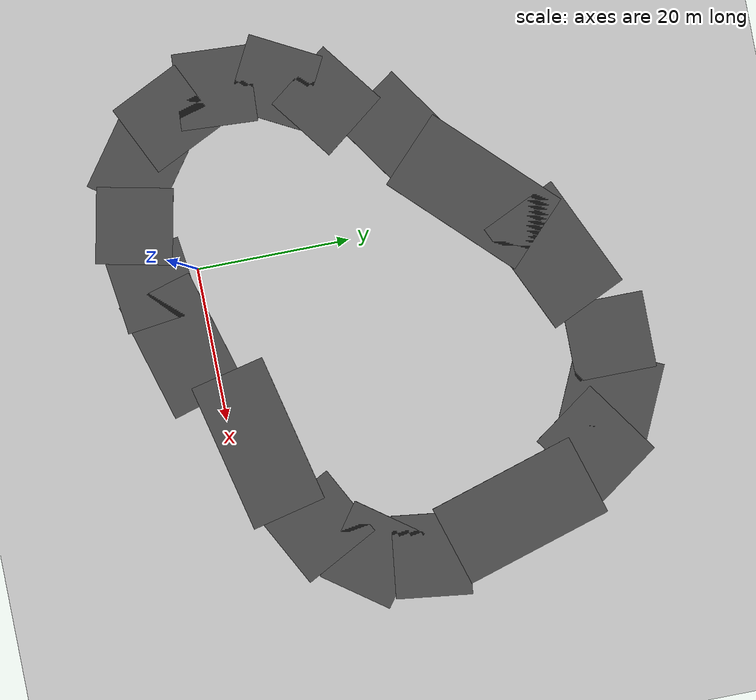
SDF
<sdf version="1.5">
 <world name="default">
  <light name="sun" type="directional">
   <pose>0 0 10 0 -0 0</pose>
   <diffuse>0.8 0.8 0.8 1</diffuse>
   <specular>0.2 0.2 0.2 1</specular>
   <attenuation>
    <range>1000</range>
    <constant>0.9</constant>
    <linear>0.01</linear>
    <quadratic>0.001</quadratic>
   </attenuation>
   <direction>-0.5 0.1 -0.9</direction>
  </light>
  <model name="ground_plane">
   <static>1</static>
   <link name="link">
    <collision name="collision">
     <geometry><plane><normal>0 0 1</normal><size>100 100</size></plane></geometry>
     <surface>
      <contact><collide_bitmask>65535</collide_bitmask></contact>
      <friction><ode><mu>100</mu><mu2>50</mu2></ode></friction>
     </surface>
    </collision>
    <visual name="visual">
     <cast_shadows>0</cast_shadows>
     <geometry><plane><normal>0 0 1</normal><size>100 100</size></plane></geometry>
     <material>
      <script><uri>file://media/materials/scripts/gazebo.material</uri><name>Gazebo/Grey</name></script>
     </material>
    </visual>
   </link>
  </model>
  <physics name="default_physics" default="0" type="ode">
   <max_step_size>0.001</max_step_size>
   <real_time_factor>1</real_time_factor>
   <real_time_update_rate>1000</real_time_update_rate>
   <gravity>0 0 -9.8</gravity>
   <magnetic_field>6e-06 2.3e-05 -4.2e-05</magnetic_field>
  </physics>
  <scene><ambient>0.4 0.4 0.4 1</ambient><background>0.7 0.7 0.7 1</background><shadows>1</shadows></scene>
  <audio><device>default</device></audio>
  <spherical_coordinates>
   <surface_model>EARTH_WGS84</surface_model>
   <latitude_deg>0</latitude_deg>
   <longitude_deg>0</longitude_deg>
   <elevation>0</elevation>
   <heading_deg>0</heading_deg>
  </spherical_coordinates>
  <model name="curved_road_4_0">
   <static>1</static>
   <link name="link">
    <collision name="collision"><geometry><box><size>20 10 0.1</size></box></geometry></collision>
    <visual name="visual">
     <cast_shadows>0</cast_shadows>
     <geometry><box><size>20 10 0.1</size></box></geometry>
     <material>
      <script>
       <uri>models/curved_road_4/materials/scripts</uri>
       <uri>models/curved_road_4/materials/textures</uri>
       <name>curved_road_4</name>
      </script>
     </material>
    </visual>
   </link>
   <pose>23.7018 3.42856 0 0 -0 0.228046</pose>
  </model>
  <model name="curved_road_11">
   <static>1</static>
   <link name="link">
    <collision name="collision"><geometry><box><size>10 10.6041 0.05</size></box></geometry></collision>
    <visual name="visual">
     <cast_shadows>0</cast_shadows>
     <geometry><box><size>10 10.6041 0.05</size></box></geometry>
     <material>
      <script>
       <uri>models/curved_road/materials/scripts</uri>
       <uri>models/curved_road/materials/textures</uri>
       <name>curved_road</name>
      </script>
     </material>
    </visual>
   </link>
   <pose>18.7472 50.8415 0 0 0 -3.14117</pose>
  </model>
  <model name="curved_road_4_3">
   <static>1</static>
   <link name="link">
    <collision name="collision"><geometry><box><size>15.8005 10.7254 0.1</size></box></geometry></collision>
    <visual name="visual">
     <cast_shadows>0</cast_shadows>
     <geometry><box><size>15.8005 10.7254 0.1</size></box></geometry>
     <material>
      <script>
       <uri>models/curved_road_4/materials/scripts</uri>
       <uri>models/curved_road_4/materials/textures</uri>
       <name>curved_road_4</name>
      </script>
     </material>
    </visual>
   </link>
   <pose>6.9955 45.7392 0 0 0 -2.70604</pose>
  </model>
  <model name="curved_road_12">
   <static>1</static>
   <link name="link">
    <collision name="collision"><geometry><box><size>10 10 0.05</size></box></geometry></collision>
    <visual name="visual">
     <cast_shadows>0</cast_shadows>
     <geometry><box><size>10 10 0.05</size></box></geometry>
     <material>
      <script>
       <uri>models/curved_road/materials/scripts</uri>
       <uri>models/curved_road/materials/textures</uri>
       <name>curved_road</name>
      </script>
     </material>
    </visual>
   </link>
   <pose>-21.9059 14.4831 0 0 0 -2.05479</pose>
  </model>
  <model name="curved_road_13">
   <static>1</static>
   <link name="link">
    <collision name="collision"><geometry><box><size>10 10 0.05</size></box></geometry></collision>
    <visual name="visual">
     <cast_shadows>0</cast_shadows>
     <geometry><box><size>10 10 0.05</size></box></geometry>
     <material>
      <script>
       <uri>models/curved_road/materials/scripts</uri>
       <uri>models/curved_road/materials/textures</uri>
       <name>curved_road</name>
      </script>
     </material>
    </visual>
   </link>
   <pose>-18.2437 20.5917 0 0 0 -2.49124</pose>
  </model>
  <model name="curved_road_14">
   <static>1</static>
   <link name="link">
    <collision name="collision"><geometry><box><size>10 10 0.05</size></box></geometry></collision>
    <visual name="visual">
     <cast_shadows>0</cast_shadows>
     <geometry><box><size>10 10 0.05</size></box></geometry>
     <material>
      <script>
       <uri>models/curved_road/materials/scripts</uri>
       <uri>models/curved_road/materials/textures</uri>
       <name>curved_road</name>
      </script>
     </material>
    </visual>
   </link>
   <pose>-22.6952 6.68699 0 0 0 -1.62627</pose>
  </model>
  <model name="curved_road_15">
   <static>1</static>
   <link name="link">
    <collision name="collision"><geometry><box><size>10 10 0.05</size></box></geometry></collision>
    <visual name="visual">
     <cast_shadows>0</cast_shadows>
     <geometry><box><size>10 10 0.05</size></box></geometry>
     <material>
      <script>
       <uri>models/curved_road/materials/scripts</uri>
       <uri>models/curved_road/materials/textures</uri>
       <name>curved_road</name>
      </script>
     </material>
    </visual>
   </link>
   <pose>-19.9538 -0.197827 0 0 0 -1.12331</pose>
  </model>
  <model name="curved_road_16">
   <static>1</static>
   <link name="link">
    <collision name="collision"><geometry><box><size>10 10 0.05</size></box></geometry></collision>
    <visual name="visual">
     <cast_shadows>0</cast_shadows>
     <geometry><box><size>10 10 0.05</size></box></geometry>
     <material>
      <script>
       <uri>models/curved_road/materials/scripts</uri>
       <uri>models/curved_road/materials/textures</uri>
       <name>curved_road</name>
      </script>
     </material>
    </visual>
   </link>
   <pose>-14.3694 -5.03343 0 0 0 -0.630209</pose>
  </model>
  <model name="curved_road_4_2">
   <static>1</static>
   <link name="link">
    <collision name="collision"><geometry><box><size>10 10 0.05</size></box></geometry></collision>
    <visual name="visual">
     <cast_shadows>0</cast_shadows>
     <geometry><box><size>10 10 0.05</size></box></geometry>
     <material>
      <script>
       <uri>models/curved_road/materials/scripts</uri>
       <uri>models/curved_road/materials/textures</uri>
       <name>curved_road</name>
      </script>
     </material>
    </visual>
   </link>
   <pose>-7.04695 -6.95137 0 0 0 -0.204463</pose>
  </model>
  <model name="curved_road_18">
   <static>1</static>
   <link name="link">
    <collision name="collision"><geometry><box><size>10 10 0.05</size></box></geometry></collision>
    <visual name="visual">
     <cast_shadows>0</cast_shadows>
     <geometry><box><size>10 10 0.05</size></box></geometry>
     <material>
      <script>
       <uri>models/curved_road/materials/scripts</uri>
       <uri>models/curved_road/materials/textures</uri>
       <name>curved_road</name>
      </script>
     </material>
    </visual>
   </link>
   <pose>0.997816 -6.03922 0 0 -0 0.127642</pose>
  </model>
  <model name="curved_road_19">
   <static>1</static>
   <link name="link">
    <collision name="collision"><geometry><box><size>10 10 0.05</size></box></geometry></collision>
    <visual name="visual">
     <cast_shadows>0</cast_shadows>
     <geometry><box><size>10 10 0.05</size></box></geometry>
     <material>
      <script>
       <uri>models/curved_road/materials/scripts</uri>
       <uri>models/curved_road/materials/textures</uri>
       <name>curved_road</name>
      </script>
     </material>
    </visual>
   </link>
   <pose>-13.4274 28.3824 0 0 -0 0.603269</pose>
  </model>
  <model name="curved_road_17_clone_0">
   <link name="link">
    <pose>0.075991 0.327947 0 0 -0 0</pose>
    <visual name="visual">
     <cast_shadows>0</cast_shadows>
     <geometry><box><size>10 10.7927 0.05</size></box></geometry>
     <material>
      <script>
       <uri>models/curved_road/materials/scripts</uri>
       <uri>models/curved_road/materials/textures</uri>
       <name>curved_road</name>
      </script>
      <ambient>1 1 1 1</ambient>
      <diffuse>1 1 1 1</diffuse>
      <specular>0 0 0 1</specular>
      <emissive>0 0 0 1</emissive>
      <shader type="pixel"/>
     </material>
    </visual>
    <collision name="collision">
     <geometry><box><size>10 10.7927 0.05</size></box></geometry>
     <surface>
      <friction><ode><mu>1</mu><mu2>1</mu2><fdir1>0 0 0</fdir1><slip1>0</slip1><slip2>0</slip2></ode></friction>
      <bounce><restitution_coefficient>0</restitution_coefficient><threshold>1e+06</threshold></bounce>
      <contact>
       <collide_without_contact>0</collide_without_contact>
       <collide_without_contact_bitmask>1</collide_without_contact_bitmask>
       <collide_bitmask>1</collide_bitmask>
       <ode>
        <soft_cfm>0</soft_cfm>
        <soft_erp>0.2</soft_erp>
        <kp>1e+13</kp>
        <kd>1</kd>
        <max_vel>0.01</max_vel>
        <min_depth>0</min_depth>
       </ode>
       <bullet>
        <split_impulse>1</split_impulse>
        <split_impulse_penetration_threshold>-0.01</split_impulse_penetration_threshold>
        <soft_cfm>0</soft_cfm>
        <soft_erp>0.2</soft_erp>
        <kp>1e+13</kp>
        <kd>1</kd>
       </bullet>
      </contact>
     </surface>
    </collision>
   </link>
   <static>1</static>
   <pose>35.9015 8.73735 0 0 -0 0.488477</pose>
  </model>
  <model name="curved_road_17_clone_0_clone">
   <link name="link">
    <pose>0.075991 0.327947 0 0 -0 0</pose>
    <visual name="visual">
     <cast_shadows>0</cast_shadows>
     <geometry><box><size>10 10.7927 0.05</size></box></geometry>
     <material>
      <script>
       <uri>models/curved_road/materials/scripts</uri>
       <uri>models/curved_road/materials/textures</uri>
       <name>curved_road</name>
      </script>
      <ambient>1 1 1 1</ambient>
      <diffuse>1 1 1 1</diffuse>
      <specular>0 0 0 1</specular>
      <emissive>0 0 0 1</emissive>
      <shader type="pixel"/>
     </material>
    </visual>
    <collision name="collision">
     <geometry><box><size>10 10.7927 0.05</size></box></geometry>
     <surface>
      <friction><ode><mu>1</mu><mu2>1</mu2><fdir1>0 0 0</fdir1><slip1>0</slip1><slip2>0</slip2></ode></friction>
      <bounce><restitution_coefficient>0</restitution_coefficient><threshold>1e+06</threshold></bounce>
      <contact>
       <collide_without_contact>0</collide_without_contact>
       <collide_without_contact_bitmask>1</collide_without_contact_bitmask>
       <collide_bitmask>1</collide_bitmask>
       <ode>
        <soft_cfm>0</soft_cfm>
        <soft_erp>0.2</soft_erp>
        <kp>1e+13</kp>
        <kd>1</kd>
        <max_vel>0.01</max_vel>
        <min_depth>0</min_depth>
       </ode>
       <bullet>
        <split_impulse>1</split_impulse>
        <split_impulse_penetration_threshold>-0.01</split_impulse_penetration_threshold>
        <soft_cfm>0</soft_cfm>
        <soft_erp>0.2</soft_erp>
        <kp>1e+13</kp>
        <kd>1</kd>
       </bullet>
      </contact>
     </surface>
    </collision>
   </link>
   <static>1</static>
   <pose>40.9427 14.9773 0 0 -0 0.945612</pose>
  </model>
  <model name="curved_road_17_clone_0_clone_clone">
   <link name="link">
    <pose>0.075991 0.327947 0 0 -0 0</pose>
    <visual name="visual">
     <cast_shadows>0</cast_shadows>
     <geometry><box><size>10 10.7927 0.05</size></box></geometry>
     <material>
      <script>
       <uri>models/curved_road/materials/scripts</uri>
       <uri>models/curved_road/materials/textures</uri>
       <name>curved_road</name>
      </script>
      <ambient>1 1 1 1</ambient>
      <diffuse>1 1 1 1</diffuse>
      <specular>0 0 0 1</specular>
      <emissive>0 0 0 1</emissive>
      <shader type="pixel"/>
     </material>
    </visual>
    <collision name="collision">
     <geometry><box><size>10 10.7927 0.05</size></box></geometry>
     <surface>
      <friction><ode><mu>1</mu><mu2>1</mu2><fdir1>0 0 0</fdir1><slip1>0</slip1><slip2>0</slip2></ode></friction>
      <bounce><restitution_coefficient>0</restitution_coefficient><threshold>1e+06</threshold></bounce>
      <contact>
       <collide_without_contact>0</collide_without_contact>
       <collide_without_contact_bitmask>1</collide_without_contact_bitmask>
       <collide_bitmask>1</collide_bitmask>
       <ode>
        <soft_cfm>0</soft_cfm>
        <soft_erp>0.2</soft_erp>
        <kp>1e+13</kp>
        <kd>1</kd>
        <max_vel>0.01</max_vel>
        <min_depth>0</min_depth>
       </ode>
       <bullet>
        <split_impulse>1</split_impulse>
        <split_impulse_penetration_threshold>-0.01</split_impulse_penetration_threshold>
        <soft_cfm>0</soft_cfm>
        <soft_erp>0.2</soft_erp>
        <kp>1e+13</kp>
        <kd>1</kd>
       </bullet>
      </contact>
     </surface>
    </collision>
   </link>
   <static>1</static>
   <pose>42.5505 22.6794 0 0 -0 1.44671</pose>
  </model>
  <model name="curved_road_4_0_clone">
   <static>1</static>
   <link name="link">
    <collision name="collision"><geometry><box><size>20 10.8996 0.1</size></box></geometry></collision>
    <visual name="visual">
     <cast_shadows>0</cast_shadows>
     <geometry><box><size>20 10.8996 0.1</size></box></geometry>
     <material>
      <script>
       <uri>models/curved_road_4/materials/scripts</uri>
       <uri>models/curved_road_4/materials/textures</uri>
       <name>curved_road_4</name>
      </script>
     </material>
    </visual>
   </link>
   <pose>38.7314 35.1859 0 0 -0 1.86567</pose>
  </model>
  <model name="curved_road_4_0_clone_clone">
   <static>1</static>
   <link name="link">
    <collision name="collision"><geometry><box><size>20 10.8996 0.1</size></box></geometry></collision>
    <visual name="visual">
     <cast_shadows>0</cast_shadows>
     <geometry><box><size>20 10.8996 0.1</size></box></geometry>
     <material>
      <script>
       <uri>models/curved_road_4/materials/scripts</uri>
       <uri>models/curved_road_4/materials/textures</uri>
       <name>curved_road_4</name>
      </script>
     </material>
    </visual>
   </link>
   <pose>-3.00893 37.1453 0 0 0 -2.34553</pose>
  </model>
  <model name="curved_road_17_clone_0_clone_clone_clone_clone_clone_0">
   <link name="link">
    <pose>0.075991 0.327947 0 0 -0 0</pose>
    <visual name="visual">
     <cast_shadows>0</cast_shadows>
     <geometry><box><size>16.1156 10.1103 0.05</size></box></geometry>
     <material>
      <script>
       <uri>models/curved_road/materials/scripts</uri>
       <uri>models/curved_road/materials/textures</uri>
       <name>curved_road</name>
      </script>
      <ambient>1 1 1 1</ambient>
      <diffuse>1 1 1 1</diffuse>
      <specular>0 0 0 1</specular>
      <emissive>0 0 0 1</emissive>
      <shader type="pixel"/>
     </material>
    </visual>
    <collision name="collision">
     <geometry><box><size>16.1156 10.1103 0.05</size></box></geometry>
     <surface>
      <friction><ode><mu>1</mu><mu2>1</mu2><fdir1>0 0 0</fdir1><slip1>0</slip1><slip2>0</slip2></ode></friction>
      <bounce><restitution_coefficient>0</restitution_coefficient><threshold>1e+06</threshold></bounce>
      <contact>
       <collide_without_contact>0</collide_without_contact>
       <collide_without_contact_bitmask>1</collide_without_contact_bitmask>
       <collide_bitmask>1</collide_bitmask>
       <ode>
        <soft_cfm>0</soft_cfm>
        <soft_erp>0.2</soft_erp>
        <kp>1e+13</kp>
        <kd>1</kd>
        <max_vel>0.01</max_vel>
        <min_depth>0</min_depth>
       </ode>
       <bullet>
        <split_impulse>1</split_impulse>
        <split_impulse_penetration_threshold>-0.01</split_impulse_penetration_threshold>
        <soft_cfm>0</soft_cfm>
        <soft_erp>0.2</soft_erp>
        <kp>1e+13</kp>
        <kd>1</kd>
       </bullet>
      </contact>
     </surface>
    </collision>
   </link>
   <static>1</static>
   <pose>9.37076 -3.50725 0 0 0 -2.86109</pose>
  </model>
  <model name="curved_road_17_clone_0_clone_clone_clone_clone_clone_1">
   <link name="link">
    <pose>-0.171601 0.700606 0 0 -0 0</pose>
    <visual name="visual">
     <cast_shadows>0</cast_shadows>
     <geometry><box><size>10 11.6156 0.05</size></box></geometry>
     <material>
      <script>
       <uri>models/curved_road/materials/scripts</uri>
       <uri>models/curved_road/materials/textures</uri>
       <name>curved_road</name>
      </script>
      <ambient>1 1 1 1</ambient>
      <diffuse>1 1 1 1</diffuse>
      <specular>0 0 0 1</specular>
      <emissive>0 0 0 1</emissive>
      <shader type="pixel"/>
     </material>
    </visual>
    <collision name="collision">
     <geometry><box><size>10 11.6156 0.05</size></box></geometry>
     <surface>
      <friction><ode><mu>1</mu><mu2>1</mu2><fdir1>0 0 0</fdir1><slip1>0</slip1><slip2>0</slip2></ode></friction>
      <bounce><restitution_coefficient>0</restitution_coefficient><threshold>1e+06</threshold></bounce>
      <contact>
       <collide_without_contact>0</collide_without_contact>
       <collide_without_contact_bitmask>1</collide_without_contact_bitmask>
       <collide_bitmask>1</collide_bitmask>
       <ode>
        <soft_cfm>0</soft_cfm>
        <soft_erp>0.2</soft_erp>
        <kp>1e+13</kp>
        <kd>1</kd>
        <max_vel>0.01</max_vel>
        <min_depth>0</min_depth>
       </ode>
       <bullet>
        <split_impulse>1</split_impulse>
        <split_impulse_penetration_threshold>-0.01</split_impulse_penetration_threshold>
        <soft_cfm>0</soft_cfm>
        <soft_erp>0.2</soft_erp>
        <kp>1e+13</kp>
        <kd>1</kd>
       </bullet>
      </contact>
     </surface>
    </collision>
   </link>
   <static>1</static>
   <pose>32.696 46.9778 0 0 -0 2.18362</pose>
  </model>
  <model name="curved_road_17_clone_0_clone_clone_clone_clone_0">
   <link name="link">
    <pose>-0.132602 0.956284 0 0 -0 0.02938</pose>
    <visual name="visual">
     <cast_shadows>0</cast_shadows>
     <geometry><box><size>10 11.7569 0.05</size></box></geometry>
     <material>
      <script>
       <uri>models/curved_road/materials/scripts</uri>
       <uri>models/curved_road/materials/textures</uri>
       <name>curved_road</name>
      </script>
      <ambient>1 1 1 1</ambient>
      <diffuse>1 1 1 1</diffuse>
      <specular>0 0 0 1</specular>
      <emissive>0 0 0 1</emissive>
      <shader type="pixel"/>
     </material>
    </visual>
    <collision name="collision">
     <geometry><box><size>10 11.7569 0.05</size></box></geometry>
     <surface>
      <friction><ode><mu>1</mu><mu2>1</mu2><fdir1>0 0 0</fdir1><slip1>0</slip1><slip2>0</slip2></ode></friction>
      <bounce><restitution_coefficient>0</restitution_coefficient><threshold>1e+06</threshold></bounce>
      <contact>
       <collide_without_contact>0</collide_without_contact>
       <collide_without_contact_bitmask>1</collide_without_contact_bitmask>
       <collide_bitmask>1</collide_bitmask>
       <ode>
        <soft_cfm>0</soft_cfm>
        <soft_erp>0.2</soft_erp>
        <kp>1e+13</kp>
        <kd>1</kd>
        <max_vel>0.01</max_vel>
        <min_depth>0</min_depth>
       </ode>
       <bullet>
        <split_impulse>1</split_impulse>
        <split_impulse_penetration_threshold>-0.01</split_impulse_penetration_threshold>
        <soft_cfm>0</soft_cfm>
        <soft_erp>0.2</soft_erp>
        <kp>1e+13</kp>
        <kd>1</kd>
       </bullet>
      </contact>
     </surface>
    </collision>
   </link>
   <static>1</static>
   <pose>26.144 50.6937 0 0 -0 2.68728</pose>
  </model>
 </world>
</sdf>
